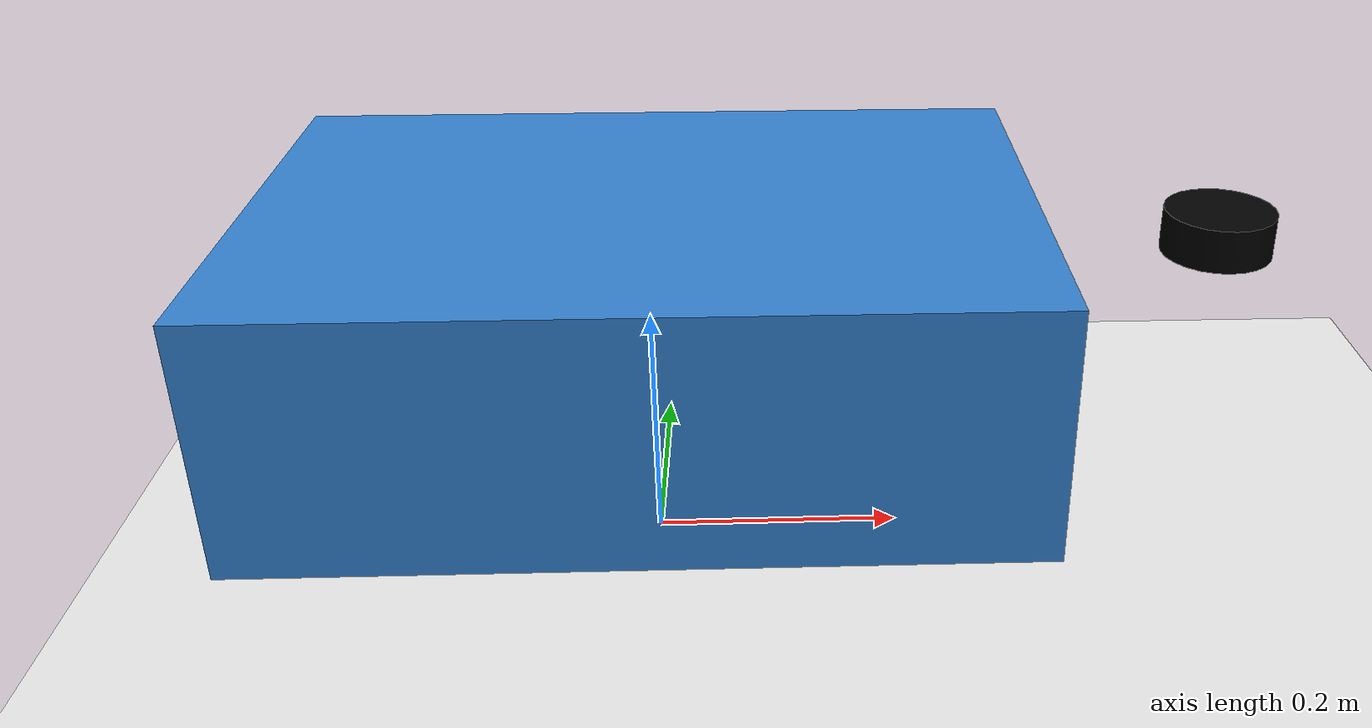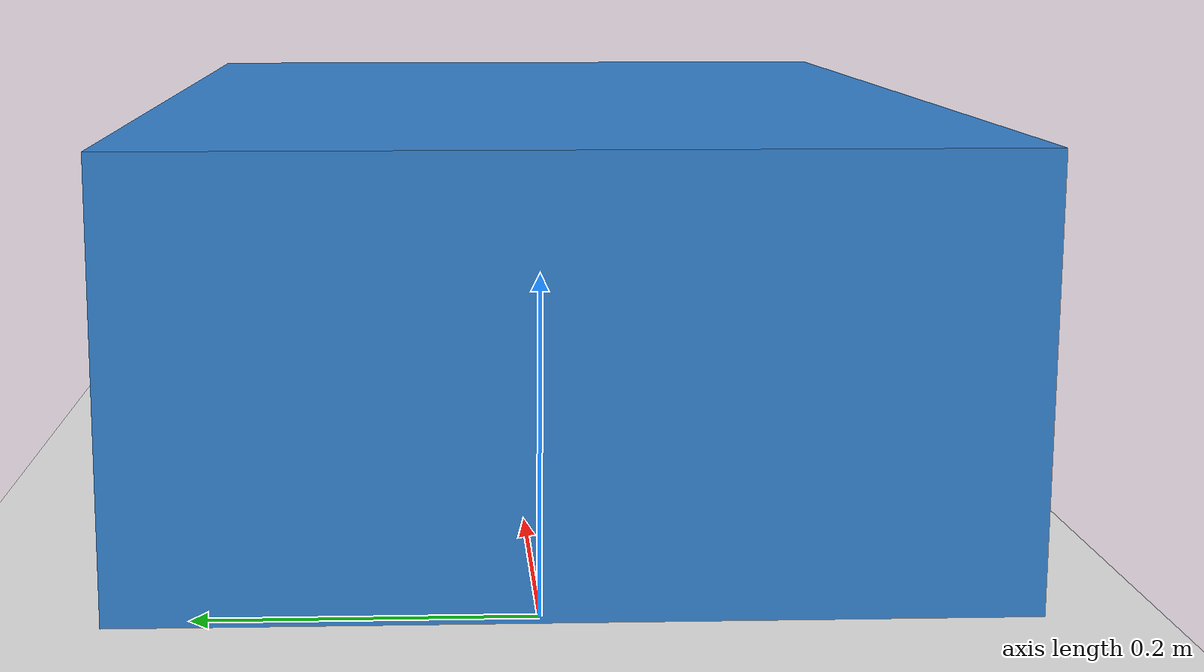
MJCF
<mujoco model="two_wheel_box">
    <compiler angle="degree" coordinate="local"/>

    <option timestep="0.01" gravity="0 0 -9.81"/>

    <worldbody>
        <light diffuse=".5 .5 .5" pos="0 0 3" dir="0 0 -1"/>
        <!-- ground -->
        <geom name="floor" type="plane" pos="0 0 0" size="10 10 0.1" rgba="0.9 0.9 0.9 1"/>

        <!-- robot body -->
        <body name="chassis" pos="0 0 0.2">
            <geom name="chassis_geom" type="box" size="0.3 0.2 0.1" rgba="0.2 0.5 0.8 1" mass="2"/>

            <!-- left front wheel -->
            <body name="left_wheel" pos="0.5 0.15 0">
                <joint name="left_wheel_joint" type="hinge" axis="0 1 0" limited="false"/>
                <geom name="left_wheel_geom" type="cylinder" size="0.05 0.02" rgba="0 0 0 1" mass="0.2" friction="1 0.005 0.0001"/>
            </body>

            <!-- right front wheel -->
            <body name="right_wheel" pos="0.25 -0.15 0">
                <joint name="right_wheel_joint" type="hinge" axis="0 1 0" limited="false"/>
                <geom name="right_wheel_geom" type="cylinder" size="0.05 0.02" rgba="0 0 0 1" mass="0.2" friction="1 0.005 0.0001"/>
            </body>
        </body>
    </worldbody>

    <actuator>
        <!-- velocity actuators for RL -->
        <velocity name="left_wheel_vel" joint="left_wheel_joint" kv="50"/>
        <velocity name="right_wheel_vel" joint="right_wheel_joint" kv="50"/>
    </actuator>
</mujoco>
